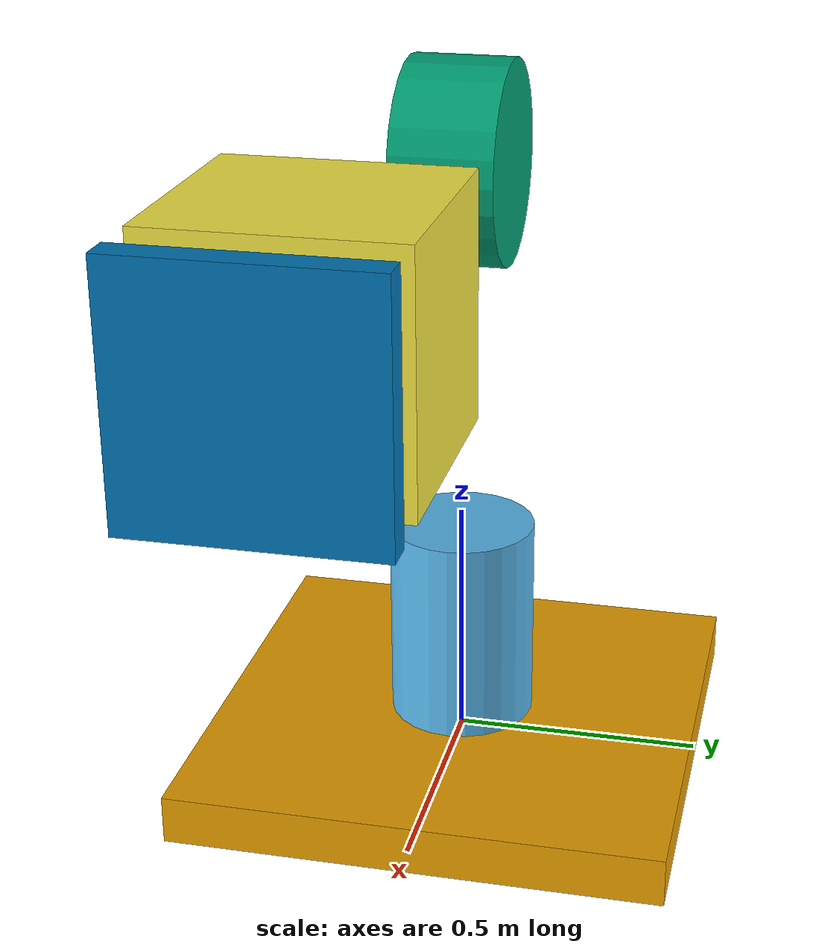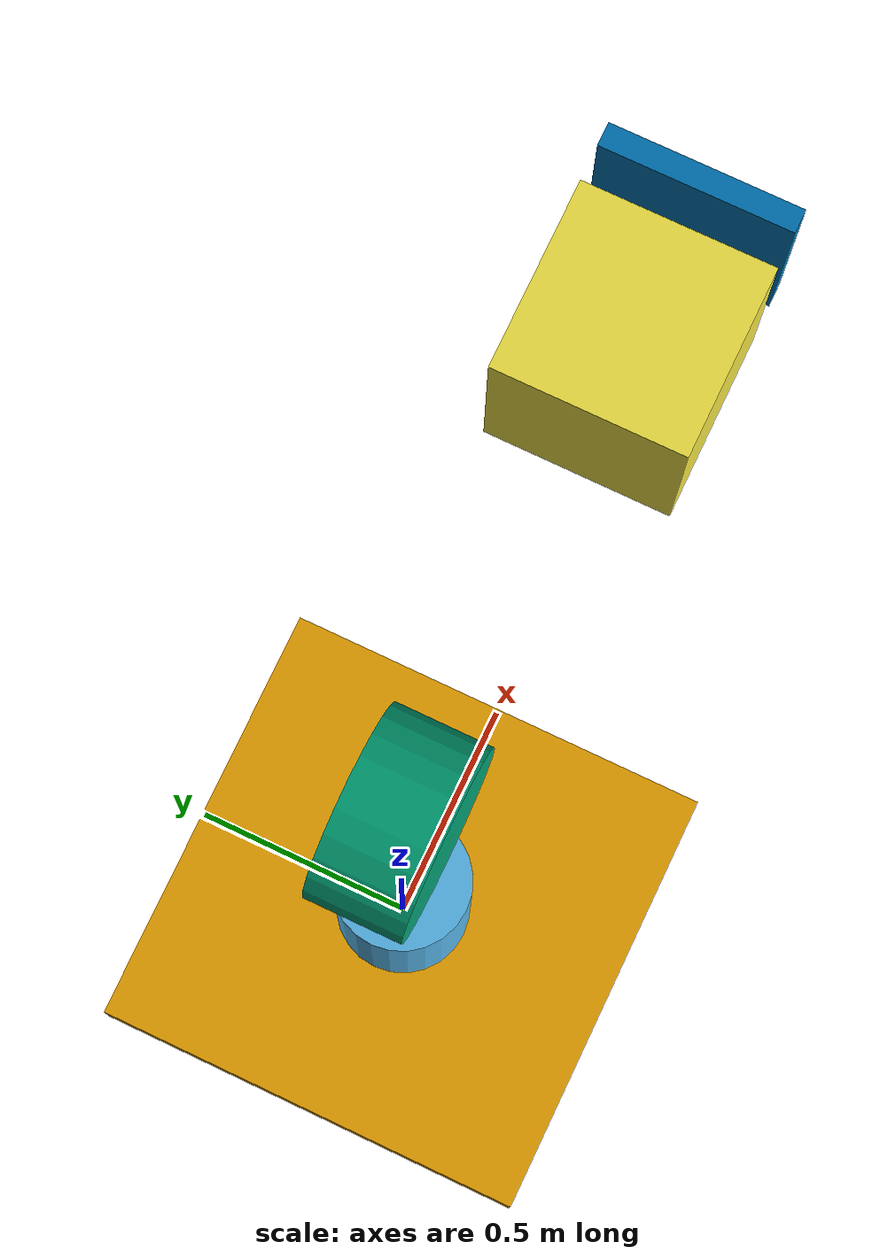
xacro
<?xml version="1.0"?>
<robot name="3dof_robot" xmlns:xacro="http://www.ros.org/wiki/xacro">

    <xacro:property name="d1" value="1" />
    <xacro:property name="d2" value="1" />
    <xacro:property name="d3" value="0.3" />
    <xacro:property name="base_link_w" value="1" />
    <xacro:property name="base_link_h" value="1" />
    <xacro:property name="base_link_t" value="0.1" />
    <xacro:property name="link_1_h" value="0.475" />
    <xacro:property name="link_1_r" value="0.150" />
    <xacro:property name="link_2_h" value="0.2" />
    <xacro:property name="link_2_w" value="0.2" />
    <xacro:property name="link_3_s" value=".4" />

    <xacro:property name="ee_w" value="0.4" />
    <xacro:property name="ee_h" value="0.05" />
    <xacro:property name="ee_limit_lower" value="0" />
    <xacro:property name="ee_limit_upper" value=".5" />

    <link name="base_link">
        <visual>
            <geometry>
                <box size="${base_link_w} ${base_link_h} ${base_link_t}" />
            </geometry>
        </visual>
        <collision>
            <geometry>
                <box size="${base_link_w} ${base_link_h} ${base_link_t}" />
            </geometry>
        </collision>
        <inertial>
            <origin rpy="0 0 0" xyz="0 0 0" />
            <mass value="100" />
            <inertia ixx="1e-3" ixy="0" ixz="0" iyy="1e-3" iyz="0" izz="1e-3" />
        </inertial>
    </link>

    <link name="link_1">
        <origin rpy="0 0 0" xyz="0 0 ${base_link_t + link_1_h/2}" />
        <visual>
            <geometry>
                <cylinder length="${link_1_h}" radius="${link_1_r}" />
            </geometry>
        </visual>
        <collision>
            <geometry>
                <cylinder length="${link_1_h}" radius="${link_1_r}" />
            </geometry>
        </collision>
        <inertial>
            <mass value="10" />
            <inertia ixx="1e-3" ixy="0.0" ixz="0.0" iyy="1e-3" iyz="0.0" izz="1e-3" />
        </inertial>
    </link>

    <joint name="base_to_link_1" type="continuous">
        <parent link="base_link" />
        <child link="link_1" />
        <origin rpy="0 0 0" xyz="0 0 ${link_1_h/2}" />
        <axis xyz="0 0 1" />
    </joint>

    <link name="link_2">
        <visual>
            <geometry>
                <cylinder length="${link_2_h}" radius="${link_2_w}" />
            </geometry>
        </visual>
        <collision>
            <geometry>
                <cylinder length="${link_2_h}" radius="${link_2_w}" />
            </geometry>
        </collision>
        <inertial>
            <mass value="10" />
            <inertia ixx="1e-3" ixy="0.0" ixz="0.0" iyy="1e-3" iyz="0.0" izz="1e-3" />
        </inertial>
    </link>

    <joint name="link_1_to_link_2" type="revolute">
        <parent link="link_1" />
        <child link="link_2" />
        <origin rpy="${pi/2} 0 0" xyz="0 0 ${d2}" />
        <limit lower="${-pi/4}" upper="${pi}" effort="100" velocity="1.0" />
        <axis xyz="0 0 1" />
    </joint>

    <link name="link_3">
        <visual>
            <geometry>
                <box size="${link_3_s} ${link_3_s} ${link_3_s}" />
            </geometry>
        </visual>

        <collision>
            <geometry>
                <box size="${link_3_s} ${link_3_s} ${link_3_s}" />
            </geometry>
        </collision>
        <inertial>
            <mass value="10" />
            <inertia ixx="1e-3" ixy="0.0" ixz="0.0" iyy="1e-3" iyz="0.0" izz="1e-3" />
        </inertial>
    </link>

    <joint name="link_2_to_link_3" type="fixed">
        <parent link="link_2" />
        <child link="link_3" />
        <origin rpy="${pi/2} 0 ${pi/2}" xyz="1 0 0" />
    </joint>

    <link name="end_effector">
        <visual>
            <geometry>
                <box size="${ee_w} ${ee_w} ${ee_h}" />
            </geometry>
        </visual>
        <collision>
            <geometry>
                <box size="${ee_w} ${ee_w} ${ee_h}" />
            </geometry>
        </collision>
        <inertial>
            <mass value="10" />
            <inertia ixx="1e-3" ixy="0.0" ixz="0.0" iyy="1e-3" iyz="0.0" izz="1e-3" />
        </inertial>
    </link>

    <joint name="link_3_to_end_effector" type="prismatic">
        <parent link="link_3" />
        <child link="end_effector" />
        <origin rpy="0 0 0" xyz="0 0 ${d3}" />
        <axis xyz="0 0 1" />
        <limit lower="${ee_limit_lower}" upper="${ee_limit_upper}" effort="100" velocity="1.0" />
    </joint>

</robot>
